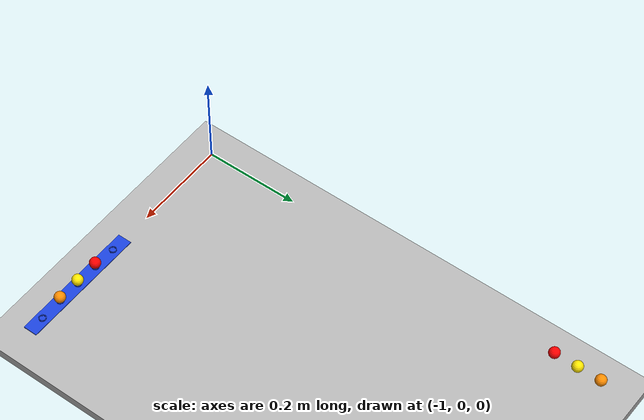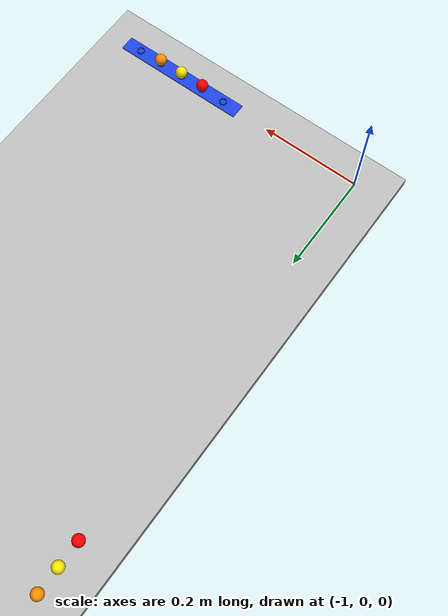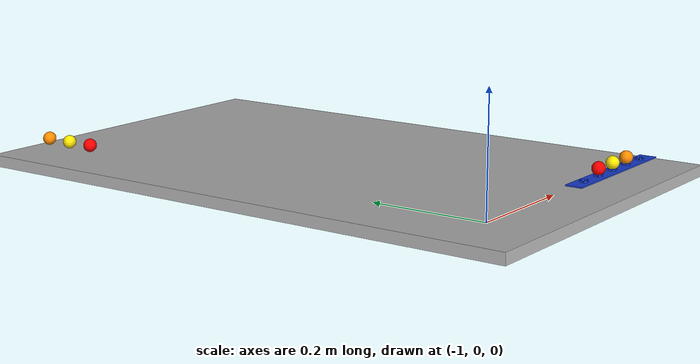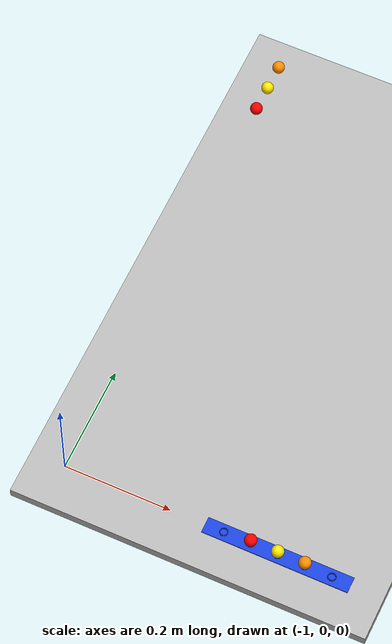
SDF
<sdf version="1.6">
 <world name="scene_trois_receptacles">
  <scene><ambient>0.6 0.6 0.6 1</ambient><background>0.8 0.8 0.8 1</background></scene>
  <light type="directional" name="sun">
   <pose>0 0 10 0 0 0</pose>
   <diffuse>0.8 0.8 0.8 1</diffuse>
   <direction>-0.5 0.1 -0.9</direction>
  </light>
  <model name="ground_plane">
   <static>true</static>
   <pose>0 0 -0.025 0 0 0</pose>
   <link name="link">
    <collision name="collision"><geometry><box><size>20 20 0.05</size></box></geometry></collision>
    <visual name="visual">
     <geometry><box><size>20 20 0.02</size></box></geometry>
     <material><ambient>0.6 0.6 0.6 1</ambient><diffuse>0.7 0.7 0.7 1</diffuse></material>
    </visual>
   </link>
  </model>
  <model name="reglette">
   <static>true</static>
   <pose>-0.6 0.0 0 0 0 0.0</pose>
   <link name="link">
    <collision name="plaque">
     <pose>0 0 0.001 0 0 0</pose>
     <geometry><box><size>0.27 0.03 0.002</size></box></geometry>
    </collision>
    <collision name="s0_0">
     <pose>-0.09325 0.00000 0.0025 0 0 0.0000</pose>
     <geometry><box><size>0.0015 0.004 0.005</size></box></geometry>
    </collision>
    <collision name="s0_1">
     <pose>-0.09523 0.00477 0.0025 0 0 0.7854</pose>
     <geometry><box><size>0.0015 0.004 0.005</size></box></geometry>
    </collision>
    <collision name="s0_2">
     <pose>-0.10000 0.00675 0.0025 0 0 1.5708</pose>
     <geometry><box><size>0.0015 0.004 0.005</size></box></geometry>
    </collision>
    <collision name="s0_3">
     <pose>-0.10477 0.00477 0.0025 0 0 2.3562</pose>
     <geometry><box><size>0.0015 0.004 0.005</size></box></geometry>
    </collision>
    <collision name="s0_4">
     <pose>-0.10675 0.00000 0.0025 0 0 3.1416</pose>
     <geometry><box><size>0.0015 0.004 0.005</size></box></geometry>
    </collision>
    <collision name="s0_5">
     <pose>-0.10477 -0.00477 0.0025 0 0 3.9270</pose>
     <geometry><box><size>0.0015 0.004 0.005</size></box></geometry>
    </collision>
    <collision name="s0_6">
     <pose>-0.10000 -0.00675 0.0025 0 0 4.7124</pose>
     <geometry><box><size>0.0015 0.004 0.005</size></box></geometry>
    </collision>
    <collision name="s0_7">
     <pose>-0.09523 -0.00477 0.0025 0 0 5.4978</pose>
     <geometry><box><size>0.0015 0.004 0.005</size></box></geometry>
    </collision>
    <collision name="s1_0">
     <pose>-0.04325 0.00000 0.0025 0 0 0.0000</pose>
     <geometry><box><size>0.0015 0.004 0.005</size></box></geometry>
    </collision>
    <collision name="s1_1">
     <pose>-0.04523 0.00477 0.0025 0 0 0.7854</pose>
     <geometry><box><size>0.0015 0.004 0.005</size></box></geometry>
    </collision>
    <collision name="s1_2">
     <pose>-0.05000 0.00675 0.0025 0 0 1.5708</pose>
     <geometry><box><size>0.0015 0.004 0.005</size></box></geometry>
    </collision>
    <collision name="s1_3">
     <pose>-0.05477 0.00477 0.0025 0 0 2.3562</pose>
     <geometry><box><size>0.0015 0.004 0.005</size></box></geometry>
    </collision>
    <collision name="s1_4">
     <pose>-0.05675 0.00000 0.0025 0 0 3.1416</pose>
     <geometry><box><size>0.0015 0.004 0.005</size></box></geometry>
    </collision>
    <collision name="s1_5">
     <pose>-0.05477 -0.00477 0.0025 0 0 3.9270</pose>
     <geometry><box><size>0.0015 0.004 0.005</size></box></geometry>
    </collision>
    <collision name="s1_6">
     <pose>-0.05000 -0.00675 0.0025 0 0 4.7124</pose>
     <geometry><box><size>0.0015 0.004 0.005</size></box></geometry>
    </collision>
    <collision name="s1_7">
     <pose>-0.04523 -0.00477 0.0025 0 0 5.4978</pose>
     <geometry><box><size>0.0015 0.004 0.005</size></box></geometry>
    </collision>
    <collision name="s2_0">
     <pose>0.00675 0.00000 0.0025 0 0 0.0000</pose>
     <geometry><box><size>0.0015 0.004 0.005</size></box></geometry>
    </collision>
    <collision name="s2_1">
     <pose>0.00477 0.00477 0.0025 0 0 0.7854</pose>
     <geometry><box><size>0.0015 0.004 0.005</size></box></geometry>
    </collision>
    <collision name="s2_2">
     <pose>0.00000 0.00675 0.0025 0 0 1.5708</pose>
     <geometry><box><size>0.0015 0.004 0.005</size></box></geometry>
    </collision>
    <collision name="s2_3">
     <pose>-0.00477 0.00477 0.0025 0 0 2.3562</pose>
     <geometry><box><size>0.0015 0.004 0.005</size></box></geometry>
    </collision>
    <collision name="s2_4">
     <pose>-0.00675 0.00000 0.0025 0 0 3.1416</pose>
     <geometry><box><size>0.0015 0.004 0.005</size></box></geometry>
    </collision>
    <collision name="s2_5">
     <pose>-0.00477 -0.00477 0.0025 0 0 3.9270</pose>
     <geometry><box><size>0.0015 0.004 0.005</size></box></geometry>
    </collision>
    <collision name="s2_6">
     <pose>-0.00000 -0.00675 0.0025 0 0 4.7124</pose>
     <geometry><box><size>0.0015 0.004 0.005</size></box></geometry>
    </collision>
    <collision name="s2_7">
     <pose>0.00477 -0.00477 0.0025 0 0 5.4978</pose>
     <geometry><box><size>0.0015 0.004 0.005</size></box></geometry>
    </collision>
    <collision name="s3_0">
     <pose>0.05675 0.00000 0.0025 0 0 0.0000</pose>
     <geometry><box><size>0.0015 0.004 0.005</size></box></geometry>
    </collision>
    <collision name="s3_1">
     <pose>0.05477 0.00477 0.0025 0 0 0.7854</pose>
     <geometry><box><size>0.0015 0.004 0.005</size></box></geometry>
    </collision>
    <collision name="s3_2">
     <pose>0.05000 0.00675 0.0025 0 0 1.5708</pose>
     <geometry><box><size>0.0015 0.004 0.005</size></box></geometry>
    </collision>
    <collision name="s3_3">
     <pose>0.04523 0.00477 0.0025 0 0 2.3562</pose>
     <geometry><box><size>0.0015 0.004 0.005</size></box></geometry>
    </collision>
    <collision name="s3_4">
     <pose>0.04325 0.00000 0.0025 0 0 3.1416</pose>
     <geometry><box><size>0.0015 0.004 0.005</size></box></geometry>
    </collision>
    <collision name="s3_5">
     <pose>0.04523 -0.00477 0.0025 0 0 3.9270</pose>
     <geometry><box><size>0.0015 0.004 0.005</size></box></geometry>
    </collision>
    <collision name="s3_6">
     <pose>0.05000 -0.00675 0.0025 0 0 4.7124</pose>
     <geometry><box><size>0.0015 0.004 0.005</size></box></geometry>
    </collision>
    <collision name="s3_7">
     <pose>0.05477 -0.00477 0.0025 0 0 5.4978</pose>
     <geometry><box><size>0.0015 0.004 0.005</size></box></geometry>
    </collision>
    <collision name="s4_0">
     <pose>0.10675 0.00000 0.0025 0 0 0.0000</pose>
     <geometry><box><size>0.0015 0.004 0.005</size></box></geometry>
    </collision>
    <collision name="s4_1">
     <pose>0.10477 0.00477 0.0025 0 0 0.7854</pose>
     <geometry><box><size>0.0015 0.004 0.005</size></box></geometry>
    </collision>
    <collision name="s4_2">
     <pose>0.10000 0.00675 0.0025 0 0 1.5708</pose>
     <geometry><box><size>0.0015 0.004 0.005</size></box></geometry>
    </collision>
    <collision name="s4_3">
     <pose>0.09523 0.00477 0.0025 0 0 2.3562</pose>
     <geometry><box><size>0.0015 0.004 0.005</size></box></geometry>
    </collision>
    <collision name="s4_4">
     <pose>0.09325 0.00000 0.0025 0 0 3.1416</pose>
     <geometry><box><size>0.0015 0.004 0.005</size></box></geometry>
    </collision>
    <collision name="s4_5">
     <pose>0.09523 -0.00477 0.0025 0 0 3.9270</pose>
     <geometry><box><size>0.0015 0.004 0.005</size></box></geometry>
    </collision>
    <collision name="s4_6">
     <pose>0.10000 -0.00675 0.0025 0 0 4.7124</pose>
     <geometry><box><size>0.0015 0.004 0.005</size></box></geometry>
    </collision>
    <collision name="s4_7">
     <pose>0.10477 -0.00477 0.0025 0 0 5.4978</pose>
     <geometry><box><size>0.0015 0.004 0.005</size></box></geometry>
    </collision>
    <visual name="v_plaque">
     <pose>0 0 0.001 0 0 0</pose>
     <geometry><box><size>0.27 0.03 0.002</size></box></geometry>
     <material><ambient>0.1 0.2 0.7 1</ambient><diffuse>0.1 0.25 0.85 1</diffuse></material>
    </visual>
    <visual name="v_s0_0">
     <pose>-0.09325 0.00000 0.0025 0 0 0.0000</pose>
     <geometry><box><size>0.0015 0.004 0.005</size></box></geometry>
     <material><ambient>0.1 0.2 0.7 1</ambient><diffuse>0.1 0.25 0.85 1</diffuse></material>
    </visual>
    <visual name="v_s0_1">
     <pose>-0.09523 0.00477 0.0025 0 0 0.7854</pose>
     <geometry><box><size>0.0015 0.004 0.005</size></box></geometry>
     <material><ambient>0.1 0.2 0.7 1</ambient><diffuse>0.1 0.25 0.85 1</diffuse></material>
    </visual>
    <visual name="v_s0_2">
     <pose>-0.10000 0.00675 0.0025 0 0 1.5708</pose>
     <geometry><box><size>0.0015 0.004 0.005</size></box></geometry>
     <material><ambient>0.1 0.2 0.7 1</ambient><diffuse>0.1 0.25 0.85 1</diffuse></material>
    </visual>
    <visual name="v_s0_3">
     <pose>-0.10477 0.00477 0.0025 0 0 2.3562</pose>
     <geometry><box><size>0.0015 0.004 0.005</size></box></geometry>
     <material><ambient>0.1 0.2 0.7 1</ambient><diffuse>0.1 0.25 0.85 1</diffuse></material>
    </visual>
    <visual name="v_s0_4">
     <pose>-0.10675 0.00000 0.0025 0 0 3.1416</pose>
     <geometry><box><size>0.0015 0.004 0.005</size></box></geometry>
     <material><ambient>0.1 0.2 0.7 1</ambient><diffuse>0.1 0.25 0.85 1</diffuse></material>
    </visual>
    <visual name="v_s0_5">
     <pose>-0.10477 -0.00477 0.0025 0 0 3.9270</pose>
     <geometry><box><size>0.0015 0.004 0.005</size></box></geometry>
     <material><ambient>0.1 0.2 0.7 1</ambient><diffuse>0.1 0.25 0.85 1</diffuse></material>
    </visual>
    <visual name="v_s0_6">
     <pose>-0.10000 -0.00675 0.0025 0 0 4.7124</pose>
     <geometry><box><size>0.0015 0.004 0.005</size></box></geometry>
     <material><ambient>0.1 0.2 0.7 1</ambient><diffuse>0.1 0.25 0.85 1</diffuse></material>
    </visual>
    <visual name="v_s0_7">
     <pose>-0.09523 -0.00477 0.0025 0 0 5.4978</pose>
     <geometry><box><size>0.0015 0.004 0.005</size></box></geometry>
     <material><ambient>0.1 0.2 0.7 1</ambient><diffuse>0.1 0.25 0.85 1</diffuse></material>
    </visual>
    <visual name="v_s1_0">
     <pose>-0.04325 0.00000 0.0025 0 0 0.0000</pose>
     <geometry><box><size>0.0015 0.004 0.005</size></box></geometry>
     <material><ambient>0.1 0.2 0.7 1</ambient><diffuse>0.1 0.25 0.85 1</diffuse></material>
    </visual>
    <visual name="v_s1_1">
     <pose>-0.04523 0.00477 0.0025 0 0 0.7854</pose>
     <geometry><box><size>0.0015 0.004 0.005</size></box></geometry>
     <material><ambient>0.1 0.2 0.7 1</ambient><diffuse>0.1 0.25 0.85 1</diffuse></material>
    </visual>
    <visual name="v_s1_2">
     <pose>-0.05000 0.00675 0.0025 0 0 1.5708</pose>
     <geometry><box><size>0.0015 0.004 0.005</size></box></geometry>
     <material><ambient>0.1 0.2 0.7 1</ambient><diffuse>0.1 0.25 0.85 1</diffuse></material>
    </visual>
    <visual name="v_s1_3">
     <pose>-0.05477 0.00477 0.0025 0 0 2.3562</pose>
     <geometry><box><size>0.0015 0.004 0.005</size></box></geometry>
     <material><ambient>0.1 0.2 0.7 1</ambient><diffuse>0.1 0.25 0.85 1</diffuse></material>
    </visual>
    <visual name="v_s1_4">
     <pose>-0.05675 0.00000 0.0025 0 0 3.1416</pose>
     <geometry><box><size>0.0015 0.004 0.005</size></box></geometry>
     <material><ambient>0.1 0.2 0.7 1</ambient><diffuse>0.1 0.25 0.85 1</diffuse></material>
    </visual>
    <visual name="v_s1_5">
     <pose>-0.05477 -0.00477 0.0025 0 0 3.9270</pose>
     <geometry><box><size>0.0015 0.004 0.005</size></box></geometry>
     <material><ambient>0.1 0.2 0.7 1</ambient><diffuse>0.1 0.25 0.85 1</diffuse></material>
    </visual>
    <visual name="v_s1_6">
     <pose>-0.05000 -0.00675 0.0025 0 0 4.7124</pose>
     <geometry><box><size>0.0015 0.004 0.005</size></box></geometry>
     <material><ambient>0.1 0.2 0.7 1</ambient><diffuse>0.1 0.25 0.85 1</diffuse></material>
    </visual>
    <visual name="v_s1_7">
     <pose>-0.04523 -0.00477 0.0025 0 0 5.4978</pose>
     <geometry><box><size>0.0015 0.004 0.005</size></box></geometry>
     <material><ambient>0.1 0.2 0.7 1</ambient><diffuse>0.1 0.25 0.85 1</diffuse></material>
    </visual>
    <visual name="v_s2_0">
     <pose>0.00675 0.00000 0.0025 0 0 0.0000</pose>
     <geometry><box><size>0.0015 0.004 0.005</size></box></geometry>
     <material><ambient>0.1 0.2 0.7 1</ambient><diffuse>0.1 0.25 0.85 1</diffuse></material>
    </visual>
    <visual name="v_s2_1">
     <pose>0.00477 0.00477 0.0025 0 0 0.7854</pose>
     <geometry><box><size>0.0015 0.004 0.005</size></box></geometry>
     <material><ambient>0.1 0.2 0.7 1</ambient><diffuse>0.1 0.25 0.85 1</diffuse></material>
    </visual>
    <visual name="v_s2_2">
     <pose>0.00000 0.00675 0.0025 0 0 1.5708</pose>
     <geometry><box><size>0.0015 0.004 0.005</size></box></geometry>
     <material><ambient>0.1 0.2 0.7 1</ambient><diffuse>0.1 0.25 0.85 1</diffuse></material>
    </visual>
    <visual name="v_s2_3">
     <pose>-0.00477 0.00477 0.0025 0 0 2.3562</pose>
     <geometry><box><size>0.0015 0.004 0.005</size></box></geometry>
     <material><ambient>0.1 0.2 0.7 1</ambient><diffuse>0.1 0.25 0.85 1</diffuse></material>
    </visual>
    <visual name="v_s2_4">
     <pose>-0.00675 0.00000 0.0025 0 0 3.1416</pose>
     <geometry><box><size>0.0015 0.004 0.005</size></box></geometry>
     <material><ambient>0.1 0.2 0.7 1</ambient><diffuse>0.1 0.25 0.85 1</diffuse></material>
    </visual>
    <visual name="v_s2_5">
     <pose>-0.00477 -0.00477 0.0025 0 0 3.9270</pose>
     <geometry><box><size>0.0015 0.004 0.005</size></box></geometry>
     <material><ambient>0.1 0.2 0.7 1</ambient><diffuse>0.1 0.25 0.85 1</diffuse></material>
    </visual>
    <visual name="v_s2_6">
     <pose>-0.00000 -0.00675 0.0025 0 0 4.7124</pose>
     <geometry><box><size>0.0015 0.004 0.005</size></box></geometry>
     <material><ambient>0.1 0.2 0.7 1</ambient><diffuse>0.1 0.25 0.85 1</diffuse></material>
    </visual>
    <visual name="v_s2_7">
     <pose>0.00477 -0.00477 0.0025 0 0 5.4978</pose>
     <geometry><box><size>0.0015 0.004 0.005</size></box></geometry>
     <material><ambient>0.1 0.2 0.7 1</ambient><diffuse>0.1 0.25 0.85 1</diffuse></material>
    </visual>
    <visual name="v_s3_0">
     <pose>0.05675 0.00000 0.0025 0 0 0.0000</pose>
     <geometry><box><size>0.0015 0.004 0.005</size></box></geometry>
     <material><ambient>0.1 0.2 0.7 1</ambient><diffuse>0.1 0.25 0.85 1</diffuse></material>
    </visual>
    <visual name="v_s3_1">
     <pose>0.05477 0.00477 0.0025 0 0 0.7854</pose>
     <geometry><box><size>0.0015 0.004 0.005</size></box></geometry>
     <material><ambient>0.1 0.2 0.7 1</ambient><diffuse>0.1 0.25 0.85 1</diffuse></material>
    </visual>
    <visual name="v_s3_2">
     <pose>0.05000 0.00675 0.0025 0 0 1.5708</pose>
     <geometry><box><size>0.0015 0.004 0.005</size></box></geometry>
     <material><ambient>0.1 0.2 0.7 1</ambient><diffuse>0.1 0.25 0.85 1</diffuse></material>
    </visual>
    <visual name="v_s3_3">
     <pose>0.04523 0.00477 0.0025 0 0 2.3562</pose>
     <geometry><box><size>0.0015 0.004 0.005</size></box></geometry>
     <material><ambient>0.1 0.2 0.7 1</ambient><diffuse>0.1 0.25 0.85 1</diffuse></material>
    </visual>
    <visual name="v_s3_4">
     <pose>0.04325 0.00000 0.0025 0 0 3.1416</pose>
     <geometry><box><size>0.0015 0.004 0.005</size></box></geometry>
     <material><ambient>0.1 0.2 0.7 1</ambient><diffuse>0.1 0.25 0.85 1</diffuse></material>
    </visual>
    <visual name="v_s3_5">
     <pose>0.04523 -0.00477 0.0025 0 0 3.9270</pose>
     <geometry><box><size>0.0015 0.004 0.005</size></box></geometry>
     <material><ambient>0.1 0.2 0.7 1</ambient><diffuse>0.1 0.25 0.85 1</diffuse></material>
    </visual>
    <visual name="v_s3_6">
     <pose>0.05000 -0.00675 0.0025 0 0 4.7124</pose>
     <geometry><box><size>0.0015 0.004 0.005</size></box></geometry>
     <material><ambient>0.1 0.2 0.7 1</ambient><diffuse>0.1 0.25 0.85 1</diffuse></material>
    </visual>
    <visual name="v_s3_7">
     <pose>0.05477 -0.00477 0.0025 0 0 5.4978</pose>
     <geometry><box><size>0.0015 0.004 0.005</size></box></geometry>
     <material><ambient>0.1 0.2 0.7 1</ambient><diffuse>0.1 0.25 0.85 1</diffuse></material>
    </visual>
    <visual name="v_s4_0">
     <pose>0.10675 0.00000 0.0025 0 0 0.0000</pose>
     <geometry><box><size>0.0015 0.004 0.005</size></box></geometry>
     <material><ambient>0.1 0.2 0.7 1</ambient><diffuse>0.1 0.25 0.85 1</diffuse></material>
    </visual>
    <visual name="v_s4_1">
     <pose>0.10477 0.00477 0.0025 0 0 0.7854</pose>
     <geometry><box><size>0.0015 0.004 0.005</size></box></geometry>
     <material><ambient>0.1 0.2 0.7 1</ambient><diffuse>0.1 0.25 0.85 1</diffuse></material>
    </visual>
    <visual name="v_s4_2">
     <pose>0.10000 0.00675 0.0025 0 0 1.5708</pose>
     <geometry><box><size>0.0015 0.004 0.005</size></box></geometry>
     <material><ambient>0.1 0.2 0.7 1</ambient><diffuse>0.1 0.25 0.85 1</diffuse></material>
    </visual>
    <visual name="v_s4_3">
     <pose>0.09523 0.00477 0.0025 0 0 2.3562</pose>
     <geometry><box><size>0.0015 0.004 0.005</size></box></geometry>
     <material><ambient>0.1 0.2 0.7 1</ambient><diffuse>0.1 0.25 0.85 1</diffuse></material>
    </visual>
    <visual name="v_s4_4">
     <pose>0.09325 0.00000 0.0025 0 0 3.1416</pose>
     <geometry><box><size>0.0015 0.004 0.005</size></box></geometry>
     <material><ambient>0.1 0.2 0.7 1</ambient><diffuse>0.1 0.25 0.85 1</diffuse></material>
    </visual>
    <visual name="v_s4_5">
     <pose>0.09523 -0.00477 0.0025 0 0 3.9270</pose>
     <geometry><box><size>0.0015 0.004 0.005</size></box></geometry>
     <material><ambient>0.1 0.2 0.7 1</ambient><diffuse>0.1 0.25 0.85 1</diffuse></material>
    </visual>
    <visual name="v_s4_6">
     <pose>0.10000 -0.00675 0.0025 0 0 4.7124</pose>
     <geometry><box><size>0.0015 0.004 0.005</size></box></geometry>
     <material><ambient>0.1 0.2 0.7 1</ambient><diffuse>0.1 0.25 0.85 1</diffuse></material>
    </visual>
    <visual name="v_s4_7">
     <pose>0.10477 -0.00477 0.0025 0 0 5.4978</pose>
     <geometry><box><size>0.0015 0.004 0.005</size></box></geometry>
     <material><ambient>0.1 0.2 0.7 1</ambient><diffuse>0.1 0.25 0.85 1</diffuse></material>
    </visual>
   </link>
  </model>
  <model name="balle_1">
   <pose>-0.65 0.0 0.0148 0 0 0</pose>
   <link name="link">
    <inertial>
     <mass>0.05</mass>
     <inertia>
      <ixx>2.645e-06</ixx>
      <iyy>2.645e-06</iyy>
      <izz>2.645e-06</izz>
      <ixy>0</ixy>
      <ixz>0</ixz>
      <iyz>0</iyz>
     </inertia>
    </inertial>
    <visual name="visual">
     <geometry><sphere><radius>0.0115</radius></sphere></geometry>
     <material><ambient>0.9 0 0 1</ambient><diffuse>1 0 0 1</diffuse></material>
    </visual>
    <collision name="collision">
     <geometry><sphere><radius>0.0115</radius></sphere></geometry>
     <surface><friction><ode><mu>2.0</mu><mu2>2.0</mu2></ode></friction></surface>
    </collision>
   </link>
  </model>
  <model name="balle_fixe_1">
   <static>true</static>
   <pose>-1.0 0.8 0.0115 0 0 0</pose>
   <link name="link">
    <visual name="visual">
     <geometry><sphere><radius>0.0115</radius></sphere></geometry>
     <material><ambient>0.9 0 0 1</ambient><diffuse>1 0 0 1</diffuse></material>
    </visual>
   </link>
  </model>
  <model name="balle_2">
   <pose>-0.6 0.0 0.0148 0 0 0</pose>
   <link name="link">
    <inertial>
     <mass>0.05</mass>
     <inertia>
      <ixx>2.645e-06</ixx>
      <iyy>2.645e-06</iyy>
      <izz>2.645e-06</izz>
      <ixy>0</ixy>
      <ixz>0</ixz>
      <iyz>0</iyz>
     </inertia>
    </inertial>
    <visual name="visual">
     <geometry><sphere><radius>0.0115</radius></sphere></geometry>
     <material><ambient>0.9 0.8 0 1</ambient><diffuse>1 0.9 0 1</diffuse></material>
    </visual>
    <collision name="collision">
     <geometry><sphere><radius>0.0115</radius></sphere></geometry>
     <surface><friction><ode><mu>2.0</mu><mu2>2.0</mu2></ode></friction></surface>
    </collision>
   </link>
  </model>
  <model name="balle_fixe_2">
   <static>true</static>
   <pose>-1.0 0.85 0.0115 0 0 0</pose>
   <link name="link">
    <visual name="visual">
     <geometry><sphere><radius>0.0115</radius></sphere></geometry>
     <material><ambient>0.9 0.8 0 1</ambient><diffuse>1 0.9 0 1</diffuse></material>
    </visual>
   </link>
  </model>
  <model name="balle_3">
   <pose>-0.5499999999999999 0.0 0.0148 0 0 0</pose>
   <link name="link">
    <inertial>
     <mass>0.05</mass>
     <inertia>
      <ixx>2.645e-06</ixx>
      <iyy>2.645e-06</iyy>
      <izz>2.645e-06</izz>
      <ixy>0</ixy>
      <ixz>0</ixz>
      <iyz>0</iyz>
     </inertia>
    </inertial>
    <visual name="visual">
     <geometry><sphere><radius>0.0115</radius></sphere></geometry>
     <material><ambient>0.9 0.45 0 1</ambient><diffuse>1 0.55 0 1</diffuse></material>
    </visual>
    <collision name="collision">
     <geometry><sphere><radius>0.0115</radius></sphere></geometry>
     <surface><friction><ode><mu>2.0</mu><mu2>2.0</mu2></ode></friction></surface>
    </collision>
   </link>
  </model>
  <model name="balle_fixe_3">
   <static>true</static>
   <pose>-1.0 0.9 0.0115 0 0 0</pose>
   <link name="link">
    <visual name="visual">
     <geometry><sphere><radius>0.0115</radius></sphere></geometry>
     <material><ambient>0.9 0.45 0 1</ambient><diffuse>1 0.55 0 1</diffuse></material>
    </visual>
   </link>
  </model>
 </world>
</sdf>
